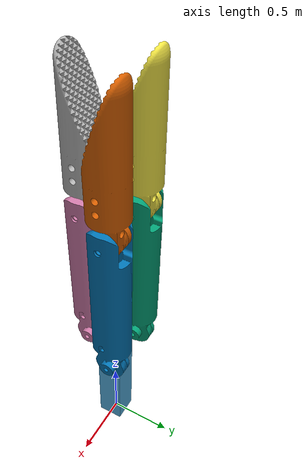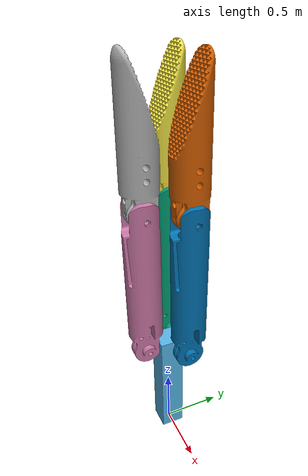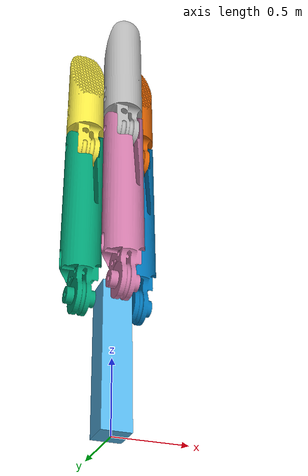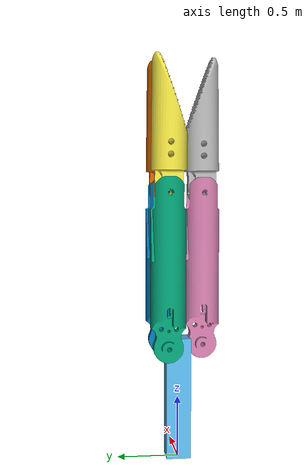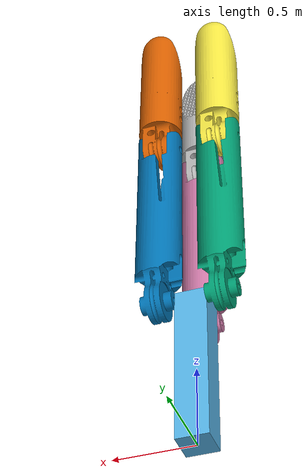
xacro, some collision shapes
<?xml version="1.0"?>
<!-- Revolute-Revolute Manipulator -->
<robot name="ss_tool" xmlns:xacro="http://www.ros.org/wiki/xacro">

  <!-- Constants for robot dimensions -->
  <xacro:property name="PI" value="3.1415926535897931"/>
  <xacro:property name="mass" value="1" /> <!-- arbitrary value for mass -->
  <xacro:property name="width" value="0.2" /> <!-- Square dimensions (widthxwidth) of beams -->
  <xacro:property name="width_palm" value="0.2" /> <!-- Square dimensions (widthxwidth) of beams -->
  <xacro:property name="height_palm" value="1" /> <!-- Link 1 -->
  <xacro:property name="height_index1" value="1.35" /> <!-- Link 2 -->
  <xacro:property name="height_index2" value="0.5" /> <!-- Link 3 -->
  <xacro:property name="height_middle1" value="1.35" /> <!-- Link 2 -->
  <xacro:property name="height_middle2" value="0.5" /> <!-- Link 3 -->
  <xacro:property name="height_thumb1" value="1.35" /> <!-- Link 3 -->
  <xacro:property name="height_thumb2" value="0.7" /> <!-- Link 3 -->
  <xacro:property name="axel_offset" value="0.05" /> <!-- Space btw top of beam and the each joint -->

  <!-- Import all Gazebo-customization elements, including Gazebo colors -->
  <xacro:include filename="$(find ss_tool_description)/urdf/ss_tool.gazebo" />
  <!-- Import Rviz colors -->
  <xacro:include filename="$(find ss_tool_description)/urdf/materials.xacro" />

  <!-- Used for fixing robot to Gazebo 'base_link' -->
  <link name="world"/>

  <joint name="fixed" type="fixed">
    <parent link="world"/>
    <child link="link_palm"/>
  </joint>

  <!-- Palm Link==================== -->
  <link name="link_palm">
    <collision>
      <origin xyz="0 0 ${height_palm/2}" rpy="0 0 0"/>
      <geometry>
	<box size="${width_palm} ${width_palm} ${height_palm}"/>
      </geometry>
    </collision>

    <visual>
      <origin xyz="0 0 0" rpy="${-PI/2} 0 0"/>
      <geometry>
        <mesh filename="package://ss_tool_description/meshes/palm.dae" scale="0.05 0.05 0.05"/>
      </geometry>
    </visual>

    <inertial>
      <origin xyz="0 0 ${height_palm/2}" rpy="0 0 0"/>
      <mass value="${mass}"/>
      <inertia
	  ixx="${mass / 12.0 * (width_palm*width_palm + height_palm*height_palm)}" ixy="0.0" ixz="0.0"
	  iyy="${mass / 12.0 * (height_palm*height_palm + width_palm*width_palm)}" iyz="0.0"
	  izz="${mass / 12.0 * (width_palm*width_palm + width_palm*width_palm)}"/>
    </inertial>
  </link>

  <joint name="joint_index_MIP" type="revolute">
    <parent link="link_palm"/>
    <child link="link_index1"/>
    <origin xyz="-0.2 ${width_palm/2} ${height_palm - axel_offset}" rpy="0 0 0"/>
    <axis xyz="1 0 0"/>
    <limit effort="330.0" lower="${-PI/3}" upper="${PI/8}" velocity="2.16"/>
    <dynamics damping="0.7"/>
  </joint>

  <joint name="joint_middle_MIP" type="revolute">
    <parent link="link_palm"/>
    <child link="link_middle1"/>
    <origin xyz="0.2 ${width_palm/2} ${height_palm - axel_offset}" rpy="0 0 0"/>
    <axis xyz="1 0 0"/>
    <limit effort="330.0" lower="${-PI/3}" upper="${PI/8}" velocity="2.16"/>
    <dynamics damping="0.7"/>
  </joint>

  <joint name="joint_thumb_MIP" type="revolute">
    <parent link="link_palm"/>
    <child link="link_thumb1"/>
    <origin xyz="0 -${width_palm} ${height_palm - axel_offset}" rpy="0 0 0"/>
    <axis xyz="1 0 0"/>
    <limit effort="330.0" lower="${-PI/8}" upper="${PI/3}" velocity="2.16"/>
    <dynamics damping="0.7"/>
  </joint>

  <!-- index1 Link====================== -->
  <link name="link_index1">
    <collision>
      <origin xyz="0 0 ${height_index1/2 - axel_offset}" rpy="0 0 0"/>
      <geometry>
	<box size="${width} ${width} ${height_index1}"/>
      </geometry>
    </collision>

    <visual>
      <origin xyz="0 0 0" rpy="${-PI/2} 0 0"/>
      <geometry>
        <mesh filename="package://ss_tool_description/meshes/fingerlink.dae" scale="0.05 0.05 0.05"/>
      </geometry>
    </visual>

    <inertial>
      <origin xyz="0 0 ${height_index1/2 - axel_offset}" rpy="0 0 0"/>
      <mass value="${mass}"/>
      <inertia
	  ixx="${mass / 12.0 * (width*width + height_index1*height_index1)}" ixy="0.0" ixz="0.0"
	  iyy="${mass / 12.0 * (height_index1*height_index1 + width*width)}" iyz="0.0"
	  izz="${mass / 12.0 * (width*width + width*width)}"/>
    </inertial>
  </link>

  <joint name="joint_index_PIP" type="revolute">
    <parent link="link_index1"/>
    <child link="link_index2"/>
    <origin xyz="0 0 ${height_index1 - axel_offset*2}" rpy="0 0 0"/>
    <axis xyz="1 0 0"/>
    <limit effort="330.0" lower="0" upper="${PI/3}" velocity="2.16"/>
    <dynamics damping="0.7"/>
  </joint>

  <!-- Index 2 Link=============== -->
  <link name="link_index2">
    <collision>
      <origin xyz="0 0 ${height_index2/2 - axel_offset}" rpy="0 0 0"/>
      <geometry>
	<box size="${width} ${width} ${height_index2}"/>
      </geometry>
    </collision>

    <visual>
      <origin xyz="0 0 0" rpy="${-PI/2} 0 0"/>
      <geometry>
        <mesh filename="package://ss_tool_description/meshes/fingertip.dae" scale="0.05 0.05 0.05"/>
      </geometry>
    </visual>

    <inertial>
      <origin xyz="0 0 ${height_index2/2 - axel_offset}" rpy="0 0 0"/>
      <mass value="${mass}"/>
      <inertia
	  ixx="${mass / 12.0 * (width*width + height_index2*height_index2)}" ixy="0.0" ixz="0.0"
	  iyy="${mass / 12.0 * (height_index2*height_index2 + width*width)}" iyz="0.0"
	  izz="${mass / 12.0 * (width*width + width*width)}"/>
    </inertial>
  </link>

  <!-- middle1 Link====================== -->
  <link name="link_middle1">
    <collision>
      <origin xyz="0 0 ${height_middle1/2 - axel_offset}" rpy="0 0 0"/>
      <geometry>
	<box size="${width} ${width} ${height_middle1}"/>
      </geometry>
    </collision>

    <visual>
      <origin xyz="0 0 0" rpy="${-PI/2} 0 0"/>
      <geometry>
        <mesh filename="package://ss_tool_description/meshes/fingerlink.dae" scale="0.05 0.05 0.05"/>
      </geometry>
    </visual>

    <inertial>
      <origin xyz="0 0 ${height_middle1/2 - axel_offset}" rpy="0 0 0"/>
      <mass value="${mass}"/>
      <inertia
	  ixx="${mass / 12.0 * (width*width + height_middle1*height_middle1)}" ixy="0.0" ixz="0.0"
	  iyy="${mass / 12.0 * (height_middle1*height_middle1 + width*width)}" iyz="0.0"
	  izz="${mass / 12.0 * (width*width + width*width)}"/>
    </inertial>
  </link>

  <joint name="joint_middle_PIP" type="revolute">
    <parent link="link_middle1"/>
    <child link="link_middle2"/>
    <origin xyz="0 0 ${height_middle1 - axel_offset*2}" rpy="0 0 0"/>
    <axis xyz="1 0 0"/>
    <limit effort="330.0" lower="0" upper="${PI/3}" velocity="2.16"/>
    <dynamics damping="0.7"/>
  </joint>

  <!-- middle 2 Link=============== -->
  <link name="link_middle2">
    <collision>
      <origin xyz="0 0 ${height_middle2/2 - axel_offset}" rpy="0 0 0"/>
      <geometry>
	<box size="${width} ${width} ${height_middle2}"/>
      </geometry>
    </collision>

    <visual>
      <origin xyz="0 0 0" rpy="${-PI/2} 0 0"/>
      <geometry>
        <mesh filename="package://ss_tool_description/meshes/fingertip.dae" scale="0.05 0.05 0.05"/>
      </geometry>
    </visual>

    <inertial>
      <origin xyz="0 0 ${height_middle2/2 - axel_offset}" rpy="0 0 0"/>
      <mass value="${mass}"/>
      <inertia
	  ixx="${mass / 12.0 * (width*width + height_middle2*height_middle2)}" ixy="0.0" ixz="0.0"
	  iyy="${mass / 12.0 * (height_middle2*height_middle2 + width*width)}" iyz="0.0"
	  izz="${mass / 12.0 * (width*width + width*width)}"/>
    </inertial>
  </link>

  <!-- thumb1 Link====================== -->
  <link name="link_thumb1">
    <collision>
      <origin xyz="0 0 ${height_thumb1/2 - axel_offset}" rpy="0 0 0"/>
      <geometry>
	<box size="${width} ${width} ${height_thumb1}"/>
      </geometry>
    </collision>

    <visual>
      <origin xyz="0 0 0" rpy="${-PI/2} 0 0"/>
      <geometry>
        <mesh filename="package://ss_tool_description/meshes/fingerlink.dae" scale="0.05 0.05 0.05"/>
      </geometry>
    </visual>

    <inertial>
      <origin xyz="0 0 ${height_thumb1/2 - axel_offset}" rpy="0 0 0"/>
      <mass value="${mass}"/>
      <inertia
	  ixx="${mass / 12.0 * (width*width + height_thumb1*height_thumb1)}" ixy="0.0" ixz="0.0"
	  iyy="${mass / 12.0 * (height_thumb1*height_thumb1 + width*width)}" iyz="0.0"
	  izz="${mass / 12.0 * (width*width + width*width)}"/>
    </inertial>
  </link>

  <joint name="joint_thumb_DIP" type="revolute">
    <parent link="link_thumb1"/>
    <child link="link_thumb2"/>
    <origin xyz="0 0 ${height_thumb1 - axel_offset*2}" rpy="0 0 0"/>
    <axis xyz="1 0 0"/>
    <limit effort="330.0" lower="${-PI/3}" upper="0" velocity="2.16"/>
    <dynamics damping="0.7"/>
  </joint>

  <!-- thumb 2 Link=============== -->
  <link name="link_thumb2">
    <collision>
      <origin xyz="0 0 ${height_thumb2/2 - axel_offset}" rpy="0 0 0"/>
      <geometry>
	<box size="${width} ${width} ${height_thumb2}"/>
      </geometry>
    </collision>

    <visual>
      <origin xyz="0 0 0" rpy="${-PI/2} 0 ${PI}"/>
      <geometry>
        <mesh filename="package://ss_tool_description/meshes/fingertip.dae" scale="0.05 0.05 0.05"/>
      </geometry>
    </visual>

    <inertial>
      <origin xyz="0 0 ${height_thumb2/2 - axel_offset}" rpy="0 0 0"/>
      <mass value="${mass}"/>
      <inertia
	  ixx="${mass / 12.0 * (width*width + height_thumb2*height_thumb2)}" ixy="0.0" ixz="0.0"
	  iyy="${mass / 12.0 * (height_thumb2*height_thumb2 + width*width)}" iyz="0.0"
	  izz="${mass / 12.0 * (width*width + width*width)}"/>
    </inertial>
  </link>

  <transmission name="tran_index1">
    <type>transmission_interface/SimpleTransmission</type>
    <joint name="joint_index1">
      <hardwareInterface>hardware_interface/EffortJointInterface</hardwareInterface>
    </joint>
    <actuator name="motor_index1">
      <hardwareInterface>hardware_interface/EffortJointInterface</hardwareInterface>
      <mechanicalReduction>1</mechanicalReduction>
    </actuator>
  </transmission>
  <transmission name="tran_index2">
    <type>transmission_interface/SimpleTransmission</type>
    <joint name="joint_index2">
      <hardwareInterface>hardware_interface/EffortJointInterface</hardwareInterface>
    </joint>
    <actuator name="motor_index2">
      <hardwareInterface>hardware_interface/EffortJointInterface</hardwareInterface>
      <mechanicalReduction>1</mechanicalReduction>
    </actuator>
  </transmission>

  <transmission name="tran_middle1">
    <type>transmission_interface/SimpleTransmission</type>
    <joint name="joint_middle1">
      <hardwareInterface>hardware_interface/EffortJointInterface</hardwareInterface>
    </joint>
    <actuator name="motor_middle1">
      <hardwareInterface>hardware_interface/EffortJointInterface</hardwareInterface>
      <mechanicalReduction>1</mechanicalReduction>
    </actuator>
  </transmission>
  <transmission name="tran_middle2">
    <type>transmission_interface/SimpleTransmission</type>
    <joint name="joint_middle2">
      <hardwareInterface>hardware_interface/EffortJointInterface</hardwareInterface>
    </joint>
    <actuator name="motor_middle2">
      <hardwareInterface>hardware_interface/EffortJointInterface</hardwareInterface>
      <mechanicalReduction>1</mechanicalReduction>
    </actuator>
  </transmission>

  <transmission name="tran_thumb1">
    <type>transmission_interface/SimpleTransmission</type>
    <joint name="joint_thumb1">
      <hardwareInterface>hardware_interface/EffortJointInterface</hardwareInterface>
    </joint>
    <actuator name="motor_thumb1">
      <hardwareInterface>hardware_interface/EffortJointInterface</hardwareInterface>
      <mechanicalReduction>1</mechanicalReduction>
    </actuator>
  </transmission>
  <transmission name="tran_thumb2">
    <type>transmission_interface/SimpleTransmission</type>
    <joint name="joint_thumb2">
      <hardwareInterface>hardware_interface/EffortJointInterface</hardwareInterface>
    </joint>
    <actuator name="motor_thumb2">
      <hardwareInterface>hardware_interface/EffortJointInterface</hardwareInterface>
      <mechanicalReduction>1</mechanicalReduction>
    </actuator>
  </transmission>

</robot>
